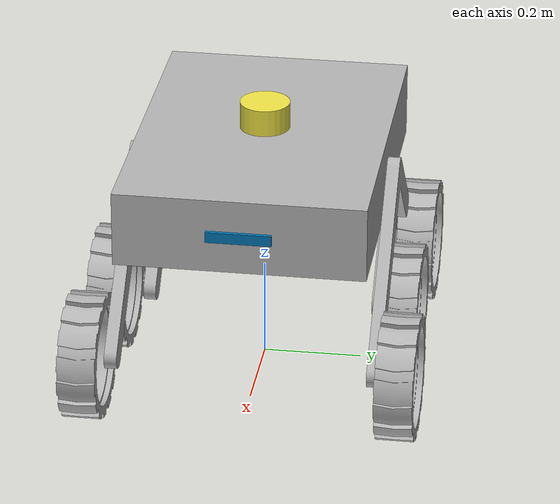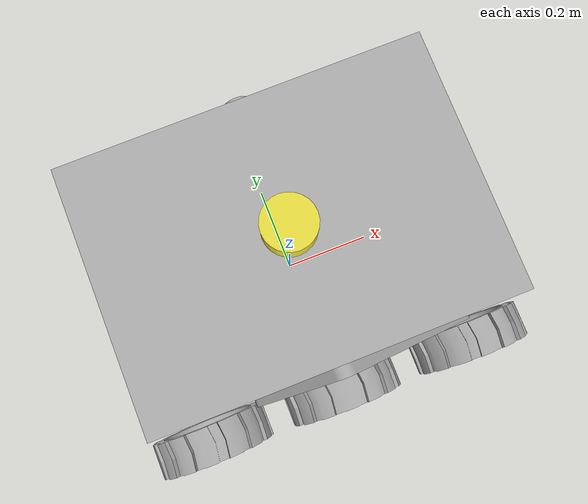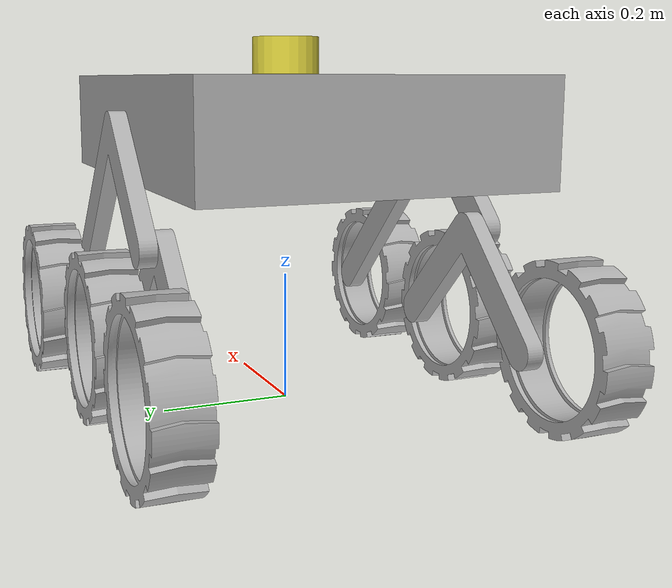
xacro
<?xml version="1.0" ?>
<robot name="ROS" xmlns:xacro="http://www.ros.org/wiki/xacro">

<xacro:include filename="$(find ROS_description)/urdf/materials.xacro" />
<xacro:include filename="$(find ROS_description)/urdf/ROS.ros2control" />
<xacro:include filename="$(find ROS_description)/urdf/ROS.gazebo" />
<link name="base_link">
  <inertial>
    <origin xyz="0.0 0.0 0.43242599999999987" rpy="0 0 0"/>
    <mass value="416.73017314454216"/>
    <inertia ixx="9.492221" iyy="17.907954" izz="25.779491" ixy="0.0" iyz="-0.0" ixz="-0.0"/>
  </inertial>
  <visual>
    <origin xyz="0 0 0" rpy="0 0 0"/>
    <geometry>
      <mesh filename="file://$(find ROS_description)/meshes/base_link.stl" scale="0.001 0.001 0.001"/>
    </geometry>
    <material name="silver"/>
  </visual>
  <collision>
    <origin xyz="0 0 0" rpy="0 0 0"/>
    <geometry>
      <mesh filename="file://$(find ROS_description)/meshes/base_link.stl" scale="0.001 0.001 0.001"/>
    </geometry>
  </collision>
  <collision name="base_box_collision">
    <origin xyz="0 0 0.43242599999999987" rpy="0 0 0"/>
    <geometry>
      <box size="0.7 0.5 0.152"/>
    </geometry>
    <surface>
      <contact>
        <ode>
          <min_depth>0.001</min_depth>
          <kp>1e+13</kp>
          <kd>1.0</kd>
        </ode>
      </contact>
      <friction>
        <ode>
          <mu>1.0</mu>
          <mu2>1.0</mu2>
        </ode>
      </friction>
    </surface>
  </collision>
</link>

<link name="Tire_v2__1__1">
  <inertial>
    <origin xyz="-3.885780586188048e-16 -0.03810000000000002 -0.0007185105878094178" rpy="0 0 0"/>
    <mass value="8.677104752089265"/>
    <inertia ixx="0.06032" iyy="0.112527" izz="0.06032" ixy="0.0" iyz="-0.0" ixz="0.0"/>
  </inertial>
  <visual>
    <origin xyz="-0.3048 0.2754 -0.127626" rpy="0 0 0"/>
    <geometry>
      <mesh filename="file://$(find ROS_description)/meshes/Tire_v2__1__1.stl" scale="0.001 0.001 0.001"/>
    </geometry>

    <material name="silver"/>
  </visual>

  <collision name="Tire_v2__1__1_collision">
  <!-- Adjust the origin to match your wheel's position -->
    <origin xyz="0 0 0" rpy="1.5707 0 0"/>
    <geometry>
      <!-- Adjust radius and length to match your wheel's size -->
      <cylinder radius="0.1269" length="0.0762" scale="0.001 0.001 0.001"/>
    </geometry>
    <max_contacts>300</max_contacts>
    <surface>
      <contact>
        <ode>
          <min_depth>0.005</min_depth>
          <kp>1e+8</kp>
          <kd>1.0</kd>
        </ode>
      </contact>
      <friction>
        <ode>
          <mu>1.0</mu>
          <mu2>1.0</mu2>
          <slip1>0.0</slip1>
          <slip2>0.0</slip2>
        </ode>
      </friction>
    </surface>
  </collision>
</link>

<link name="Tire_v2_1">
  <inertial>
    <origin xyz="-3.7848861595352765e-16 -0.0635 -0.43314451058780956" rpy="0 0 0"/>
    <mass value="8.677104752089265"/>
    <inertia ixx="0.06032" iyy="0.112527" izz="0.06032" ixy="-0.0" iyz="-0.0" ixz="0.0"/>
  </inertial>
  <visual>
    <origin xyz="0.0 0.25 -0.127626" rpy="0 0 0"/>
    <geometry>
      <mesh filename="file://$(find ROS_description)/meshes/Tire_v2_1.stl" scale="0.001 0.001 0.001"/>
    </geometry>
    <material name="silver"/>
  </visual>

  <collision name="Tire_v2_1_collision">
  <!-- Adjust the origin to match your wheel's position -->
    <origin xyz="0 0 0" rpy="1.5707 0 0" />
    <geometry>
      <!-- Adjust radius and length to match your wheel's size -->
      <cylinder radius="0.1269" length="0.0762" scale="0.001 0.001 0.001"/>
    </geometry>
    <max_contacts>300</max_contacts>
    <surface>
      <contact>
        <ode>
          <min_depth>0.005</min_depth>
          <kp>1e+8</kp>
          <kd>1.0</kd>
        </ode>
      </contact>
      <friction>
        <ode>
          <mu>1.0</mu>
          <mu2>1.0</mu2>
          <slip1>0.0</slip1>
          <slip2>0.0</slip2>
        </ode>
      </friction>
    </surface>
  </collision>
</link>

<link name="Tire_v2__2__1">
  <inertial>
    <origin xyz="-3.885780586188048e-16 -0.0635 -0.127626" rpy="0 0 0"/>
    <mass value="8.677104752089265"/>
    <inertia ixx="0.06032" iyy="0.112527" izz="0.06032" ixy="-0.0" iyz="-0.0" ixz="0.0"/>
  </inertial>
  <visual>
    <origin xyz="0.3048 0.25 -0.127626" rpy="0 0 0"/>
    <geometry>
      <mesh filename="file://$(find ROS_description)/meshes/Tire_v2__2__1.stl" scale="0.001 0.001 0.001"/>
    </geometry>
    <material name="silver"/>
  </visual>

  <collision name="Tire_v2_2_1_collision">
  <!-- Adjust the origin to match your wheel's position -->
    <origin xyz="0 0 0" rpy="1.5707 0 0"/>
    <geometry>
      <!-- Adjust radius and length to match your wheel's size -->
      <cylinder radius="0.1269" length="0.0762" scale="0.001 0.001 0.001"/>
    </geometry>
    <max_contacts>300</max_contacts>
    <surface>
      <contact>
        <ode>
          <min_depth>0.005</min_depth>
          <kp>1e+8</kp>
          <kd>1.0</kd>
        </ode>
      </contact>
      <friction>
        <ode>
          <mu>1.0</mu>
          <mu2>1.0</mu2>
          <slip1>0.0</slip1>
          <slip2>0.0</slip2>
        </ode>
      </friction>
    </surface>
  </collision>
</link>

<link name="sus_bot_1">
  <inertial>
    <origin xyz="-5.551115123125783e-17 0.012699999999999989 -0.08297428650305538" rpy="0 0 0"/>
    <mass value="4.742657425528629"/>
    <inertia ixx="0.012243" iyy="0.05665" izz="0.044916" ixy="0.0" iyz="-0.0" ixz="-0.0"/>
  </inertial>
  <visual>
    <origin xyz="0.1524 0.25 -0.280026" rpy="0 0 0"/>
    <geometry>
      <mesh filename="file://$(find ROS_description)/meshes/sus_bot_1.stl" scale="0.001 0.001 0.001"/>
    </geometry>
    <material name="silver"/>
  </visual>
  <collision>
    <origin xyz="0.1524 0.25 -0.280026" rpy="0 0 0"/>
    <geometry>
      <mesh filename="file://$(find ROS_description)/meshes/sus_bot_1.stl" scale="0.001 0.001 0.001"/>
    </geometry>
  </collision>
</link>

<link name="sus_top_1">
  <inertial>
    <origin xyz="0.07650373441982396 -0.012699999999999989 -0.13332358399886612" rpy="0 0 0"/>
    <mass value="6.925724353849822"/>
    <inertia ixx="0.054998" iyy="0.191843" izz="0.13759" ixy="-0.0" iyz="-0.0" ixz="0.061981"/>
  </inertial>
  <visual>
    <origin xyz="-0.0 0.25 -0.432426" rpy="0 0 0"/>
    <geometry>
      <mesh filename="file://$(find ROS_description)/meshes/sus_top_1.stl" scale="0.001 0.001 0.001"/>
    </geometry>
    <material name="silver"/>
  </visual>
  <collision>
    <origin xyz="-0.0 0.25 -0.432426" rpy="0 0 0"/>
    <geometry>
      <mesh filename="file://$(find ROS_description)/meshes/sus_top_1.stl" scale="0.001 0.001 0.001"/>
    </geometry>
  </collision>
</link>

<link name="Tire_v2__1__Mirror__1">
  <inertial>
    <origin xyz="-5.551115123125783e-17 0.03810000000000002 5.551115123125783e-17" rpy="0 0 0"/>
    <mass value="8.677104752089251"/>
    <inertia ixx="0.06032" iyy="0.112527" izz="0.06032" ixy="0.0" iyz="-0.0" ixz="0.0"/>
  </inertial>
  <visual>
    <origin xyz="-0.3048 -0.2754 -0.127626" rpy="0 0 0"/>
    <geometry>
      <mesh filename="file://$(find ROS_description)/meshes/Tire_v2__1__Mirror__1.stl" scale="0.001 0.001 0.001"/>
    </geometry>
    <material name="silver"/>
  </visual>

  <collision name="Tire_v2__1__Mirror__1_collision">
  <!-- Adjust the origin to match your wheel's position -->
    <origin xyz="0 0 0" rpy="1.5707 0 0"/>
    <geometry>
      <!-- Adjust radius and length to match your wheel's size -->
      <cylinder radius="0.1269" length="0.0762" scale="0.001 0.001 0.001"/>
    </geometry>
    <max_contacts>300</max_contacts>

    <surface>
      <contact>
        <ode>
          <min_depth>0.005</min_depth>
          <kp>1e+8</kp>
          <kd>1.0</kd>
        </ode>
      </contact>
      <friction>
        <ode>
          <mu>1.0</mu>
          <mu2>1.0</mu2>
          <slip1>0.0</slip1>
          <slip2>0.0</slip2>
        </ode>
      </friction>
    </surface>
  </collision>
</link>

<link name="Tire_v2_Mirror__1">
  <inertial>
    <origin xyz="0 -0.2754 -0.127626" rpy="0 0 0"/>
    <mass value="8.677104752089251"/>
    <inertia ixx="0.06032" iyy="0.112527" izz="0.06032" ixy="-0.0" iyz="-0.0" ixz="0.0"/>
  </inertial>
  <visual>
    <origin xyz="0 -0.2754 -0.127626" rpy="0 0 0"/>
    <geometry>
      <mesh filename="file://$(find ROS_description)/meshes/Tire_v2_Mirror__1.stl" scale="0.001 0.001 0.001"/>
    </geometry>
    <material name="silver"/>
  </visual>

  <collision name="Tire_v2_Mirror__1_collision">
  <!-- Adjust the origin to match your wheel's position -->
    <origin xyz="0 0 0" rpy="1.5707 0 0"/>
    <geometry>
      <!-- Adjust radius and length to match your wheel's size -->
      <cylinder radius="0.1269" length="0.0762" scale="0.001 0.001 0.001"/>
    </geometry>
    <max_contacts>300</max_contacts>

    <surface>
      <contact>
        <ode>
          <min_depth>0.005</min_depth>
          <kp>1e+8</kp>
          <kd>1.0</kd>
        </ode>
      </contact>
      <friction>
        <ode>
          <mu>1.0</mu>
          <mu2>1.0</mu2>
          <slip1>0.0</slip1>
          <slip2>0.0</slip2>
        </ode>
      </friction>
    </surface>
  </collision>
</link>

<link name="Tire_v2__2__Mirror__1">
  <inertial>
    <origin xyz="0.3048 -0.2754 -0.127626" rpy="0 0 0"/>
    <mass value="8.677104752089251"/>
    <inertia ixx="0.06032" iyy="0.112527" izz="0.06032" ixy="0.0" iyz="-0.0" ixz="0.0"/>
  </inertial>
  <visual>
    <origin xyz="0.3048 -0.2754 -0.127626" rpy="0 0 0"/>
    <geometry>
      <mesh filename="file://$(find ROS_description)/meshes/Tire_v2__2__Mirror__1.stl" scale="0.001 0.001 0.001"/>
    </geometry>
    <material name="silver"/>
  </visual>

  <collision name="Tire_v2__2__Mirror__1_collision">
  <!-- Adjust the origin to match your wheel's position -->
    <origin xyz="0 0 0" rpy="1.5707 0 0"/>
    <geometry>
      <!-- Adjust radius and length to match your wheel's size -->
      <cylinder radius="0.1269" length="0.0762" scale="0.001 0.001 0.001"/>
    </geometry>
    <max_contacts>300</max_contacts>
    <surface>
      <contact>
        <ode>
          <min_depth>0.005</min_depth>
          <kp>1e+8</kp>
          <kd>1.0</kd>
        </ode>
      </contact>
      <friction>
        <ode>
          <mu>1.0</mu>
          <mu2>1.0</mu2>
          <slip1>0.0</slip1>
          <slip2>0.0</slip2>
        </ode>
      </friction>
    </surface>
  </collision>
</link>

<link name="sus_bot_Mirror__1">
  <inertial>
    <origin xyz="0.0 -0.012699999999999989 -0.08297428650305536" rpy="0 0 0"/>
    <mass value="4.742657425528629"/>
    <inertia ixx="0.012243" iyy="0.05665" izz="0.044916" ixy="0.0" iyz="0.0" ixz="0.0"/>
  </inertial>
  <visual>
    <origin xyz="0.1524 -0.25 -0.280026" rpy="0 0 0"/>
    <geometry>
      <mesh filename="file://$(find ROS_description)/meshes/sus_bot_Mirror__1.stl" scale="0.001 0.001 0.001"/>
    </geometry>
    <material name="silver"/>
  </visual>
  <collision>
    <origin xyz="0.1524 -0.25 -0.280026" rpy="0 0 0"/>
    <geometry>
      <mesh filename="file://$(find ROS_description)/meshes/sus_bot_Mirror__1.stl" scale="0.001 0.001 0.001"/>
    </geometry>
  </collision>
</link>

<link name="sus_top_Mirror__1">
  <inertial>
    <origin xyz="0.07650373441982386 0.012699999999999989 -0.13332358399886612" rpy="0 0 0"/>
    <mass value="6.925724353849821"/>
    <inertia ixx="0.054998" iyy="0.191843" izz="0.13759" ixy="-0.0" iyz="0.0" ixz="0.061981"/>
  </inertial>
  <visual>
    <origin xyz="-0.0 -0.25 -0.432426" rpy="0 0 0"/>
    <geometry>
      <mesh filename="file://$(find ROS_description)/meshes/sus_top_Mirror__1.stl" scale="0.001 0.001 0.001"/>
    </geometry>
    <material name="silver"/>
  </visual>
  <collision>
    <origin xyz="-0.0 -0.25 -0.432426" rpy="0 0 0"/>
    <geometry>
      <mesh filename="file://$(find ROS_description)/meshes/sus_top_Mirror__1.stl" scale="0.001 0.001 0.001"/>
    </geometry>
  </collision>
</link>

<link name="lidar_link">
  <inertial>
    <origin xyz="0 0 0" rpy="0 0 0"/>
    <mass value="0.125"/>
    <inertia ixx="0.001" ixy="0" ixz="0" iyy="0.001" iyz="0" izz="0.001" />
  </inertial>

  <collision>
    <origin xyz="0 0 0" rpy="0 0 0"/>
    <geometry>
      <cylinder radius="0.0508" length="0.055"/>
    </geometry>
  </collision>

  <visual>
    <origin xyz="0 0 0" rpy="0 0 0"/>
    <geometry>
      <cylinder radius="0.0508" length="0.055"/>
    </geometry>
  </visual>
</link>

<joint name="lidar_joint" type="fixed">
  <parent link="base_link"/>
  <child link="lidar_link"/>
  <origin xyz="0 0 0.5382" rpy="0 0 0"/>
</joint>

<link name="camera_link">
  <visual>
    <origin xyz="0 0 0" rpy="0 0 0"/>
    <geometry>
      <box size="0.015 0.130 0.022"/>
    </geometry>
  </visual>

  <collision>
    <origin xyz="0 0 0" rpy="0 0 0"/>
    <geometry>
      <box size="0.015 0.130 0.022"/>
    </geometry>
  </collision>

  <inertial>
    <origin xyz="0 0 0" rpy="0 0 0"/>
    <mass value="0.035"/>
    <inertia ixx="0.001" ixy="0" ixz="0" iyy="0.001" iyz="0" izz="0.001" />
  </inertial>
</link>

<joint name="camera_joint" type="fixed">
  <parent link="base_link"/>
  <child link="camera_link"/>
  <origin xyz="0.35 0 0.4324" rpy="0 0 0"/>
</joint>

<joint name="rf" type="continuous">
  <origin xyz="0.3048 -0.0254 -0.3048" rpy="0 0 0"/>
  <parent link="sus_top_1"/>
  <child link="Tire_v2__1__1"/>
  <axis xyz="0.0 1.0 0.0"/>
</joint>

<joint name="rm" type="continuous">
  <origin xyz="0.1524 0.0 -0.1524" rpy="0 0 0"/>
  <parent link="sus_bot_1"/>
  <child link="Tire_v2_1"/>
  <axis xyz="0.0 1.0 0.0"/>
</joint>

<joint name="rb" type="continuous">
  <origin xyz="-0.1524 0.0 -0.1524" rpy="0 0 0"/>
  <parent link="sus_bot_1"/>
  <child link="Tire_v2__2__1"/>
  <axis xyz="0.0 1.0 0.0"/>
</joint>

<joint name="rs2" type="revolute">
  <origin xyz="-0.1524 0.0 -0.1524" rpy="0 0 0"/>
  <parent link="sus_top_1"/>
  <child link="sus_bot_1"/>
  <axis xyz="0.0 1.0 0.0"/>
  <limit effort="30" velocity="1.0" lower="-0.25" upper="0.25" />
</joint>

<joint name="rs1" type="revolute">
  <origin xyz="0.0 -0.25 0.432426" rpy="0 0 0"/>
  <parent link="base_link"/>
  <child link="sus_top_1"/>
  <axis xyz="0.0 1.0 0.0"/>
  <limit effort="30" velocity="1.0" lower="-0.25" upper="0.25" />
</joint>

<joint name="lf" type="continuous">
  <origin xyz="0.3048 0.0254 -0.3048" rpy="0 0 0"/>
  <parent link="sus_top_Mirror__1"/>
  <child link="Tire_v2__1__Mirror__1"/>
  <axis xyz="0.0 1.0 0.0"/>
</joint>

<joint name="lm" type="continuous">
  <origin xyz="0.1524 0.0 -0.1524" rpy="0 0 0"/>
  <parent link="sus_bot_Mirror__1"/>
  <child link="Tire_v2_Mirror__1"/>
  <axis xyz="0.0 1.0 0.0"/>
</joint>

<joint name="lb" type="continuous">
  <origin xyz="-0.1524 0.0 -0.1524" rpy="0 0 0"/>
  <parent link="sus_bot_Mirror__1"/>
  <child link="Tire_v2__2__Mirror__1"/>
  <axis xyz="0.0 1.0 0.0"/>
</joint>

<joint name="ls2" type="revolute">
  <origin xyz="-0.1524 0.0 -0.1524" rpy="0 0 0"/>
  <parent link="sus_top_Mirror__1"/>
  <child link="sus_bot_Mirror__1"/>
  <axis xyz="0.0 -1.0 0.0"/>
  <limit effort="30" velocity="1.0" lower="-0.25" upper="0.25" />
</joint>

<joint name="ls1" type="revolute">
  <origin xyz="0.0 0.25 0.432426" rpy="0 0 0"/>
  <parent link="base_link"/>
  <child link="sus_top_Mirror__1"/>
  <axis xyz="0.0 -1.0 0.0"/>
  <limit effort="30" velocity="1.0" lower="-0.25" upper="0.25" />
</joint>

</robot>

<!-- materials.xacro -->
<robot name="ROS" xmlns:xacro="http://www.ros.org/wiki/xacro" >

<material name="silver">
  <color rgba="0.700 0.700 0.700 1.000"/>
</material>

</robot>
